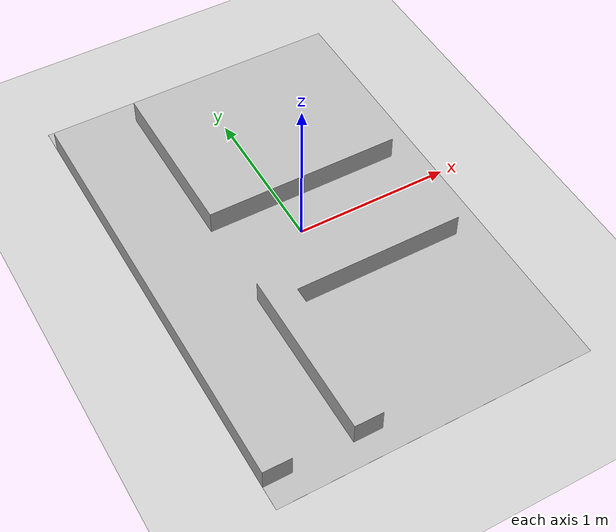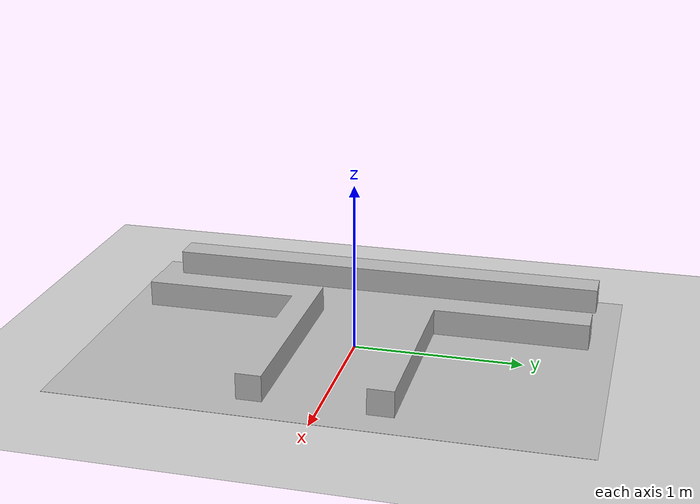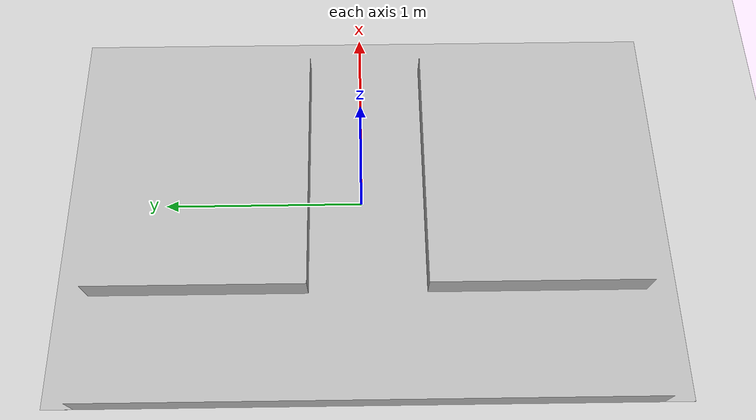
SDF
<sdf version="1.7">
 <world name="default">
  <light name="sun" type="directional">
   <pose>0 0 10 0 -0 0</pose>
   <diffuse>0.8 0.8 0.8 1</diffuse>
   <specular>0.2 0.2 0.2 1</specular>
   <attenuation>
    <range>1000</range>
    <constant>0.9</constant>
    <linear>0.01</linear>
    <quadratic>0.001</quadratic>
   </attenuation>
   <direction>-0.5 0.1 -0.9</direction>
   <spot><inner_angle>0</inner_angle><outer_angle>0</outer_angle><falloff>0</falloff></spot>
  </light>
  <model name="ground_plane">
   <static>1</static>
   <link name="link">
    <collision name="collision">
     <geometry><plane><normal>0 0 1</normal><size>100 100</size></plane></geometry>
     <surface><friction><ode><mu>100</mu><mu2>50</mu2></ode></friction></surface>
    </collision>
    <visual name="visual">
     <cast_shadows>0</cast_shadows>
     <geometry><plane><normal>0 0 1</normal><size>100 100</size></plane></geometry>
     <material>
      <script><uri>file://media/materials/scripts/gazebo.material</uri><name>Gazebo/Grey</name></script>
     </material>
    </visual>
   </link>
  </model>
  <gravity>0 0 -9.8</gravity>
  <magnetic_field>6e-06 2.3e-05 -4.2e-05</magnetic_field>
  <atmosphere type="adiabatic"/>
  <physics name="default_physics" default="0" type="ode">
   <max_step_size>0.001</max_step_size>
   <real_time_factor>1</real_time_factor>
   <real_time_update_rate>1000</real_time_update_rate>
  </physics>
  <scene><ambient>0.4 0.4 0.4 1</ambient><background>0.7 0.7 0.7 1</background><shadows>1</shadows></scene>
  <audio><device>default</device></audio>
  <spherical_coordinates>
   <surface_model>EARTH_WGS84</surface_model>
   <latitude_deg>0</latitude_deg>
   <longitude_deg>0</longitude_deg>
   <elevation>0</elevation>
   <heading_deg>0</heading_deg>
  </spherical_coordinates>
  <light name="user_point_light_0" type="point">
   <pose>-0.178995 -8.02798 1 0 -0 0</pose>
   <diffuse>0.5 0.5 0.5 1</diffuse>
   <specular>0.1 0.1 0.1 1</specular>
   <attenuation>
    <range>20</range>
    <constant>0.5</constant>
    <linear>0.01</linear>
    <quadratic>0.001</quadratic>
   </attenuation>
   <cast_shadows>0</cast_shadows>
   <direction>0 0 -1</direction>
   <spot><inner_angle>0</inner_angle><outer_angle>0</outer_angle><falloff>0</falloff></spot>
  </light>
  <model name="cam_bot">
   <static>true</static>
   <link name="base_link">
    <inertial>
     <mass>1.58499</mass>
     <inertia>
      <ixx>0.01042</ixx>
      <ixy>0.001177</ixy>
      <ixz>-0.0008871</ixz>
      <iyy>0.01045</iyy>
      <iyz>0.0002226</iyz>
      <izz>0.01817</izz>
     </inertia>
    </inertial>
    <collision name="base_link_collision">
     <geometry>
      <mesh><scale>1 1 1</scale><uri>model://flipkart_round_one/material/final_arena_aruco.dae</uri></mesh>
     </geometry>
    </collision>
    <visual name="base_link_visual">
     <geometry>
      <mesh><scale>1 1 1</scale><uri>model://flipkart_round_one/material/final_arena_aruco.dae</uri></mesh>
     </geometry>
    </visual>
    <sensor name="camera" type="camera">
     <update_rate>30</update_rate>
     <camera name="head">
      <horizontal_fov>1.39626</horizontal_fov>
      <image><width>960</width><height>720</height><format>R8G8B8</format></image>
      <clip><near>0.02</near><far>300</far></clip>
      <noise><type>gaussian</type><mean>0</mean><stddev>0.007</stddev></noise>
     </camera>
     <plugin name="camera_controller" filename="libgazebo_ros_camera.so">
      <alwaysOn>1</alwaysOn>
      <updateRate>0.0</updateRate>
      <cameraName>usb_cam</cameraName>
      <imageTopicName>image_raw</imageTopicName>
      <cameraInfoTopicName>/camera/camera_info</cameraInfoTopicName>
      <frameName>camera_link</frameName>
      <hackBaseline>0.07</hackBaseline>
      <distortionK1>0.0</distortionK1>
      <distortionK2>0.0</distortionK2>
      <distortionK3>0.0</distortionK3>
      <distortionT1>0.0</distortionT1>
      <distortionT2>0.0</distortionT2>
     </plugin>
     <pose>-0.5 0 2.5 0.000403 1.57059 0</pose>
    </sensor>
   </link>
   <pose>0.069335 -0.021497 0.000498 -4e-06 -3e-06 -6.7e-05</pose>
  </model>
 </world>
</sdf>
